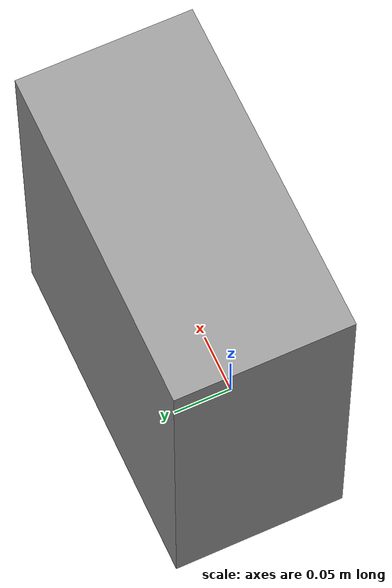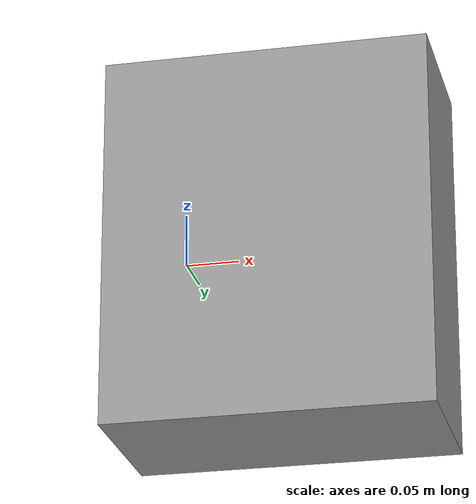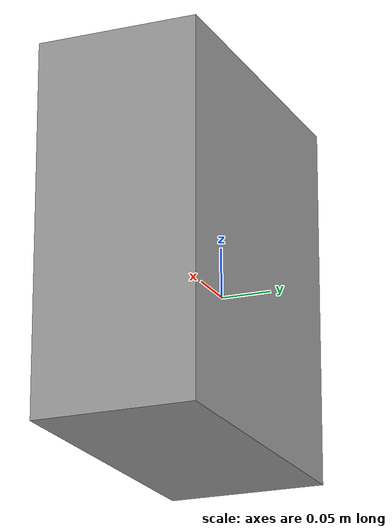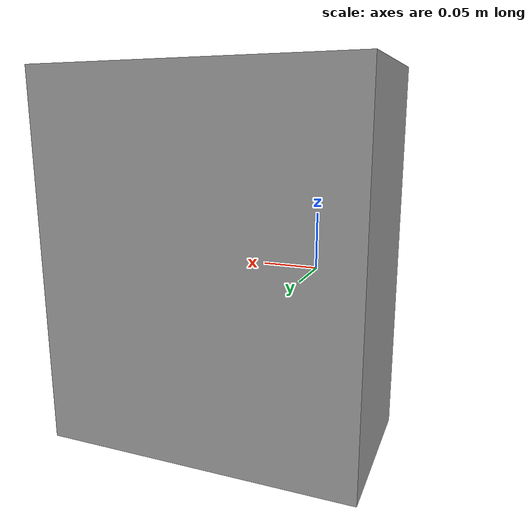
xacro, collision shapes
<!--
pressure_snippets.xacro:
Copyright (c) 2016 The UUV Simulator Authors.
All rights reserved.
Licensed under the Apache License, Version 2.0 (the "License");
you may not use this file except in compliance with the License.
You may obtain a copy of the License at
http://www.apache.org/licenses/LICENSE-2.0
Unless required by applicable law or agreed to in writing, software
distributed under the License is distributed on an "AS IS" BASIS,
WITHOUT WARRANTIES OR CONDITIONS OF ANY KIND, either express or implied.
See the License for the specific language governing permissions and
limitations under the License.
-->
<?xml version="1.0"?>
<robot name="x3_rov" xmlns:xacro="http://www.ros.org/wiki/xacro">

	<!-- includes -->
	<xacro:include filename="$(find x3_sim)/urdf/macros2.xacro" />

	<!-- properties/variables -->
	<xacro:arg name="debug" default="0"/>
	<xacro:arg name="namespace" default="x3_rov"/>
	<xacro:arg name="inertial_reference_frame" default="world"/>
	<xacro:property name="neutrally_buoyant" value="0" />

	<xacro:property name="x3_length" value="0.485" />
	<xacro:property name="x3_width"  value="0.257" />
	<xacro:property name="x3_height" value="0.354" />

	<xacro:property name="x3_cob"	 value="0 0 0.07}" /> <!-- center of balance xyz -->
	<xacro:property name="x3_mass"   value="900" />      <!-- kg -->
	<!-- calculations are based roughly on volume distribution -->
	<xacro:property name="x3_m_main"     value="${x3_mass * 0.66}" />
	<xacro:property name="x3_m_fin"      value="${x3_mass * 0.14}" />
	<xacro:property name="x3_m_thruster" value="${x3_mass * 0.03}" />

	<!-- * * * LINK DEFINITIONS * * * -->

	<!-- Dummy link to suppress warnings about root link inertia -->
	<!-- VERY IMPORTANT! Base link NEEDS to be target of hydrodynamic calculations -->
	<link name="$(arg namespace)/base_link">
	</link>

	<link name="$(arg namespace)/x3_rov_link">
		<xacro:box_inertial
			mass="${x3_mass}"
			x="${x3_length}"
			y="${x3_width * 4/5}"
			z="${x3_height}"
		>
			<origin xyz="0 0 0" rpy="0 0 0"/>
		</xacro:box_inertial>

		<collision>
			<origin xyz="${x3_length * 3/16} 0 0" rpy="0 0 0"/>
			<geometry>
				<box size="${x3_length * 5/8} ${x3_width * 3/5} ${x3_height}"/>
			</geometry>
		</collision>

		<visual>
			<origin xyz="0 0 0" rpy="0 0 0"/>
			<geometry>
				<mesh filename="package://x3_sim/models/x3_low_poly_smoothed.dae"/>
			</geometry>
			<material name="grey"/>
		</visual>
	</link>

	<!-- Attaching body to dummy link -->
	<joint name="$(arg namespace)/base_joint" type="fixed">
		<parent link="$(arg namespace)/base_link"/>
		<child link="$(arg namespace)/x3_rov_link"/>
	</joint>

	<!-- top fin -->
	<!-- bottom fin -->
	<!-- left thruster -->
	<!-- right thruster -->

	<!-- * * * SENSOR DEFINITIONS * * * -->

	<!-- camera -->
	<xacro:x3_camera
		suffix="1"
		parent_link="$(arg namespace)/base_link">
	<origin xyz="${x3_length*48/100} 0 ${x3_height*26/100}" rpy="0 0 0"/>
	</xacro:x3_camera>

	<!-- imu -->
	<xacro:include filename="$(find uuv_sensor_ros_plugins)/urdf/imu_snippets.xacro"/>
	<xacro:imu_plugin_macro
      namespace="$(arg namespace)"
      imu_suffix=""
      parent_link="$(arg namespace)/base_link"
      imu_topic="imu"
      mass_imu_sensor="0.015"
      gyroscope_noise_density="0.0003394"
      gyroscope_random_walk="0.000038785"
      gyroscope_bias_correlation_time="1000.0"
      gyroscope_turn_on_bias_sigma="0.0087"
      accelerometer_noise_density="0.004"
      accelerometer_random_walk="0.006"
      accelerometer_bias_correlation_time="300.0"
      accelerometer_turn_on_bias_sigma="0.1960"
      orientation_noise="0.01"
      enable_local_ned_frame="false"
      reference_frame="world"
      update_rate="100">
      <inertia ixx="0.00001" ixy="0.0" ixz="0.0" iyy="0.00001" iyz="0.0" izz="0.00001" />
      <origin xyz="${x3_length*48/100} 0 ${x3_height*26/100}" rpy="0 0 0"/>
    </xacro:imu_plugin_macro>

	<!-- pressure sensor -->
	<xacro:include filename="$(find uuv_sensor_ros_plugins)/urdf/pressure_snippets.xacro"/>
	<xacro:default_pressure
		namespace="$(arg namespace)"
		parent_link="$(arg namespace)/base_link">
	<origin xyz="${x3_length*48/100} 0 ${x3_height*26/100}" rpy="0 0 0"/>
	</xacro:default_pressure>

	<!-- magnetometer -->
	<xacro:include filename="$(find uuv_sensor_ros_plugins)/urdf/magnetometer_snippets.xacro"/>
	<xacro:default_magnetometer
		namespace="$(arg namespace)"
		parent_link="$(arg namespace)/base_link">
	</xacro:default_magnetometer>

	<!-- THRUSTER DEFINITIONS -->

	<!-- Port-Aft (left-back)-->
	<xacro:thruster_macro thruster_id="0">
		<origin xyz="${-x3_length * 21/80} ${ (x3_width * 31/100)} 0" rpy="0 0 ${pi}"/>
	</xacro:thruster_macro>

	<!-- Stbd-Aft (right-back)-->
	<xacro:thruster_macro thruster_id="1">
		<origin xyz="${-x3_length * 21/80} ${-(x3_width * 31/100)} 0" rpy="0 0 ${pi}"/>
	</xacro:thruster_macro>

	<!-- Middle-Vert -->
	<xacro:thruster_macro thruster_id="2">
		<origin xyz="0 0 ${x3_height*(1/2 - 1/6)}" rpy="0 ${-pi/2} 0"/>
	</xacro:thruster_macro>

	<!-- Middle-Lat -->
	<xacro:thruster_macro thruster_id="3">
		<origin xyz="${x3_length * 17.5/100} 0 0" rpy="0 0 ${pi/2}"/>
	</xacro:thruster_macro>

	<!-- Creating hydrodynamic model of the system -->
	<xacro:rov_hydro_model
		parent_link="$(arg namespace)/base_link"
		mass="${x3_mass}"
		length="${x3_length}"
		width="${x3_width}"
		height="${x3_height}"
		cob="${x3_cob}"
		neutrally_buoyant="${neutrally_buoyant}"
	/>

	<!-- * * * GAZEBO CONFIGURATION * * * -->
	<gazebo>
		<plugin name="gazebo_ros_control" filename="libgazebo_ros_control.so">
			<robotNamespace>/$(arg namespace)</robotNamespace>
			<robotParam>/$(arg namespace)/robot_description</robotParam>
		</plugin>
		<!-- Default joint state publisher -->
		<plugin name="uuv_joint_state_publisher" filename="libuuv_joint_state_publisher.so">
			<robotNamespace>$(arg namespace)</robotNamespace>
			<updateRate>50</updateRate>
		</plugin>
	</gazebo>

	<!-- * * * PUBLISH MODEL STATE * * * -->

</robot>

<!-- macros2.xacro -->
<robot name="x3_rov_macros" xmlns:xacro="http://www.ros.org/wiki/xacro">

	<!-- properties/variables -->
	<xacro:arg name="debug" default="0"/>
	<xacro:arg name="namespace" default="x3_rov"/>
	<xacro:arg name="inertial_reference_frame" default="world"/>

	<!-- * * * inertial calculations * * * -->
	<!-- source: -->
	<!-- https://github.com/ros-industrial/universal_robot/blob/06d8b9e2f5f86aa54f9f2845f11edbc84e2f951e/ur_description/urdf/ur10.urdf.xacro#L12-L20 -->

	<!-- cylinder -->
	<xacro:macro name="cylinder_inertial" params="*origin mass radius length">
    <inertial>
      <mass value="${mass}" />
			<xacro:insert_block name="origin" />

      <inertia
		ixx="${0.0833333 * mass * (3 * radius * radius + length * length)}" ixy="0.0" ixz="0.0"
        iyy="${0.0833333 * mass * (3 * radius * radius + length * length)}" iyz="0.0"
        izz="${0.5 * mass * radius * radius}"
			/>
    </inertial>
  </xacro:macro>

	<!-- * * * macros for creating links * * * -->

	<!-- create fin and attach to parent -->
	<xacro:macro name="x3_fin" params="suffix parent_link origin_xyz mass radius length">

		<link name="$(arg namespace)/fin_${suffix}_link">

			<xacro:cylinder_inertial
				mass="${mass}"
				radius="${radius}"
				length="${length}"
			>
				<origin xyz="${-length/2} 0 0" rpy="0 ${pi/2} 0"/>
			</xacro:cylinder_inertial>

			<collision>
				<origin xyz="${-length/2} 0 0" rpy="0 ${pi/2} 0"/>
				<geometry>
					<cylinder radius="${radius}" length="${length}"/>
				</geometry>
			</collision>

			<visual>
				<origin rpy="0 ${pi/2} 0" xyz="${-length/2} 0 0"/>
				<geometry>
					<cylinder radius="1e-5" length="1e-5"/>
				</geometry>
				<material name="black"/>
			</visual>
		</link>

		<joint name="$(arg namespace)/fin_${suffix}_joint" type="fixed">
			<parent link="${parent_link}"/>
			<child link="$(arg namespace)/fin_${suffix}_link"/>
			<origin xyz="${origin_xyz}" rpy="0 0 0"/>
			<axis xyz="0 0 0"/>
		</joint>

	</xacro:macro>

	<!-- create thruster housing and attach to parent -->
	<xacro:macro name="x3_thruster" params="suffix parent_link origin_xyz mass radius length mirror">

		<link name="$(arg namespace)/thruster_conn_${suffix}_link">

			<xacro:cylinder_inertial
				mass="${mass * 1/3}"
				radius="${radius * 2/3}"
				length="${length/2}"
			>
				<origin xyz="${-length/4} 0 0" rpy="0 ${pi/2} 0"/>
			</xacro:cylinder_inertial>

			<collision>
				<origin xyz="${-length/4} 0 0" rpy="0 ${pi/2} 0"/>
				<geometry>
					<cylinder radius="${radius * 2/3}" length="${length/2}"/>
				</geometry>
			</collision>

			<visual>
				<origin xyz="${-length/4} 0 0" rpy="0 ${pi/2} 0" />
				<geometry>
					<cylinder radius="1e-5" length="1e-5"/>
				</geometry>
				<material name="black"/>
			</visual>
		</link>

		<joint name="$(arg namespace)/thruster_conn_${suffix}_joint" type="fixed">
			<parent link="${parent_link}"/>
			<child link="$(arg namespace)/thruster_conn_${suffix}_link"/>
			<origin xyz="${origin_xyz}" rpy="0 0 0"/>
			<axis xyz="0 0 0"/>
		</joint>

		<link name="$(arg namespace)/thruster_body_${suffix}_link">

			<xacro:cylinder_inertial
				mass="${mass * 2/3}"
				radius="${radius}"
				length="${length/2}"
			>
				<origin xyz="${-length/4} 0 0" rpy="0 ${pi/2} 0"/>
			</xacro:cylinder_inertial>

			<collision>
				<origin xyz="${-length/4} 0 0" rpy="0 ${pi/2} 0"/>
				<geometry>
					<cylinder radius="${radius}" length="${length/2}"/>
				</geometry>
			</collision>

			<visual>
				<origin xyz="${-length/4} 0 0" rpy="0 ${pi/2} 0"/>
				<geometry>
					<cylinder radius="1e-5" length="1e-5"/>
				</geometry>
				<material name="black"/>
			</visual>
		</link>

		<joint name="$(arg namespace)/thruster_body_${suffix}_joint" type="fixed">
			<parent link="$(arg namespace)/thruster_conn_${suffix}_link"/>
			<child link="$(arg namespace)/thruster_body_${suffix}_link"/>
			<origin xyz="${-length/2} ${mirror * radius * 1/8} 0" rpy="0 0 0"/>
			<axis xyz="0 0 0"/>
		</joint>

	</xacro:macro>

	<!-- camera macro - based off of uuv camera snippet with some modifications -->
	<xacro:macro name="x3_camera" params="parent_link suffix *origin">
		<link name="$(arg namespace)/camera${suffix}_link">
			<xacro:box_inertial
				mass="1e-4"
				x="1e-4"
				y="1e-4"
				z="1e-4"
			>
			<origin xyz="0 0 0" rpy="0 0 0"/>
			</xacro:box_inertial>

			<visual>
				<origin xyz="0 0 0" rpy="0 0 0"/>
				<geometry>
				<box size="1e-4 1e-4 1e-4"/>
				</geometry>
			</visual>

			<collision>
				<origin xyz="0 0 0" rpy="0 0 0"/>
				<geometry>
				<box size="1e-4 1e-4 1e-4"/>
				</geometry>
			</collision>
		</link>

		<joint name="$(arg namespace)/camera${suffix}_joint" type="revolute">
			<parent link="${parent_link}"/>
			<child link="$(arg namespace)/camera${suffix}_link"/>

			<xacro:insert_block name="origin" />
			<axis xyz="0 1 0"/>
			<limit effort="1e-12" lower="${-pi/6}" upper="${pi/6}" velocity="0.5"/>
		</joint>

		<transmission name="$(arg namespace)/camera${suffix}/trans">
			<type>transmission_interface/SimpleTransmission</type>
			<joint name="$(arg namespace)/camera${suffix}_joint">
				<hardwareInterface>hardware_interface/EffortJointInterface</hardwareInterface>
			</joint>
			<actuator name="$(arg namespace)/camera${suffix}/motor">
				<hardwareInterface>hardware_interface/EffortJointInterface</hardwareInterface>
				<mechanicalReduction>1</mechanicalReduction>
			</actuator>
		</transmission>

		<gazebo reference="$(arg namespace)/camera${suffix}_link">
			<sensor type="camera" name="camera${suffix}_link">
				<update_rate>30</update_rate>
				<camera name="camera${suffix}_link">
				<vertical_fov>115</vertical_fov>
				<image>
					<width>1920</width>
					<height>1080</height>
					<format>R8G8B8</format>
				</image>
				<clip>
					<near>0.05</near>
					<far>300</far>
				</clip>
				<noise>
					<type>gaussian</type>
					<mean>0.0</mean>
					<stddev>0.007</stddev>
				</noise>
				</camera>
				<plugin name="camera${suffix}_controller" filename="libgazebo_ros_camera.so">
				<updateRate>30</updateRate>

				<cameraName>x3_cam</cameraName>
				<frameName>$(arg namespace)/camera${suffix}_link</frameName>
				<imageTopicName>image_raw</imageTopicName>
				<cameraInfoTopicName>camera_info</cameraInfoTopicName>

				<hackBaseline>0.7</hackBaseline>

				<distortionK1>0.0</distortionK1>
				<distortionK2>0.0</distortionK2>
				<distortionK3>0.0</distortionK3>
				<distortionT1>0.0</distortionT1>
				<distortionT2>0.0</distortionT2>

				<attenuationR>0.0</attenuationR>
				<attenuationG>0.0</attenuationG>
				<attenuationB>0.0</attenuationB>

				<backgroundR>0</backgroundR>
				<backgroundG>0</backgroundG>
				<backgroundB>0</backgroundB>

				<imageTopicName>image_raw</imageTopicName>

				<!-- required for ros depth cam -->
				</plugin>
			</sensor>
		</gazebo>
	</xacro:macro>

	<!-- hydrodynamic_model -->
	<xacro:macro name="rov_hydro_model" params="parent_link mass length width height cob neutrally_buoyant">

		<gazebo>
			<plugin name="uuv_plugin" filename="libuuv_underwater_object_ros_plugin.so">
				<!-- Hydro parameters for the vehicle-->
				<fluid_density>1028.0</fluid_density>
				<flow_velocity_topic>hydrodynamics/current_velocity</flow_velocity_topic>
				<debug>$(arg debug)</debug>

				<link name="${parent_link}">
					<neutrally_buoyant>${neutrally_buoyant}</neutrally_buoyant>
					<volume>${mass/1028}</volume>
					<box>
						<width>${width}</width>
						<length>${length}</length>
						<height>${height}</height>
					</box>
					<center_of_buoyancy>${cob}</center_of_buoyancy>
					<hydrodynamic_model>
						<type>fossen</type>
						<added_mass>
						<!-- based on values from rexrov but tweaked -->
						<!-- scaled by a factor of 100 -->
						 450    0    0     0    0    0
						   0  450    0     0    0    0
						   0    0  450     0    0    0
						   0    0    0   1.3    0    0
						   0    0    0     0  2.7    0
						   0    0    0     0    0  2.1
						</added_mass>
						<!-- Linear damping: see p.31 in Berg2012 -->
						<linear_damping>
						 -150 -200 -200 -100 -100 -50
						</linear_damping>
						<!-- Non-linear damping: see p.30 in Berg2012 -->
						<quadratic_damping>
						-1500 -2000 -2000 -500 -500 -500
						</quadratic_damping>
					</hydrodynamic_model>
				</link>
			</plugin>
		</gazebo>

	</xacro:macro>

	<!-- Thruster macro -->
	<xacro:include filename="$(find uuv_descriptions)/urdf/common.urdf.xacro"/>
	<xacro:include filename="$(find uuv_gazebo_ros_plugins)/urdf/thruster_snippets.xacro"/>
	<!-- Thruster model -->
	<xacro:property name="thruster_mesh_file" value="file://$(find x3_sim)/models/x3_low_poly_propeller.dae"/>
	<!-- Wrapper for thruster macro -->
	<xacro:macro name="thruster_macro" params="thruster_id *origin">
		<xacro:thruster_module_first_order_basic_fcn_macro
			namespace="$(arg namespace)"
			thruster_id="${thruster_id}"
			mesh_filename="${thruster_mesh_file}"
			dyn_time_constant="0.05"
			rotor_constant="0.1"
			>
			<xacro:insert_block name="origin"/>
		</xacro:thruster_module_first_order_basic_fcn_macro>
	</xacro:macro>

</robot>

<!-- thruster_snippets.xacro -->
<robot xmlns:xacro="http://www.ros.org/wiki/xacro">

  <!-- ROTOR DYNAMICS MACROS -->

  <!-- First order dynamics -->

  <xacro:macro name="rotor_dyn_first_order_macro" params="time_constant">
    <dynamics>
      <type>FirstOrder</type>
      <timeConstant>${time_constant}</timeConstant>
    </dynamics>
  </xacro:macro>

  <!--
    MACROS FOR CONVERSION FUNCTIONS BETWEEN ROTOR'S ANG. VELOCITY AND
    THRUSTER FORCE
  -->

  <!--
    1) Basic curve
      Input: x
      Output: thrust
      Function: thrust = rotorConstant * x * abs(x)
  -->
  <xacro:macro name="thruster_cf_basic_macro"
    params="rotor_constant">
    <conversion>
      <type>Basic</type>
      <rotorConstant>${rotor_constant}</rotorConstant>
    </conversion>
  </xacro:macro>

  <xacro:macro name="thruster_cf_dead_zone_macro"
    params="rotor_constant_l
            rotor_constant_r
            delta_l
            delta_r">
    <conversion>
      <type>Bessa</type>
      <rotorConstantL>${rotor_constant_l}</rotorConstantL>
      <rotorConstantR>${rotor_constant_r}</rotorConstantR>
      <deltaL>${delta_l}</deltaL>
      <deltaR>${delta_r}</deltaR>
    </conversion>
  </xacro:macro>

  <xacro:macro name="thruster_cf_linear_interp_macro"
    params="input_values
            output_values">
    <conversion>
      <type>LinearInterp</type>
      <inputValues>${input_values}</inputValues>
      <outputValues>${output_values}</outputValues>
    </conversion>
  </xacro:macro>

  <!-- THRUSTER MODULE MACROS  -->

  <xacro:macro name="generic_thruster_macro"
    params="namespace
            thruster_id
            *origin
            mesh_filename
            *dynamics
            *conversion">
    <joint name="${namespace}/thruster_${thruster_id}_joint" type="continuous">
      <xacro:insert_block name="origin"/>
      <axis xyz="1 0 0"/>
      <parent link="${namespace}/base_link"/>
      <child link="${namespace}/thruster_${thruster_id}"/>
    </joint>

    <link name="${namespace}/thruster_${thruster_id}">
      <xacro:box_inertial x="0" y="0" z="0" mass="0.001">
        <origin xyz="0 0 0" rpy="0 0 0"/>
      </xacro:box_inertial>
      <visual>
        <origin rpy="0 0 0" xyz="0 0 0"/>
        <geometry>
          <mesh filename="${mesh_filename}" scale="1 1 1"/>
        </geometry>
      </visual>
      <collision>
        <!-- todo: gazebo needs a collision volume or it will ignore the pose of
           the joint that leads to this link (and assume it to be the identity) -->
        <geometry>
          <cylinder length="0.000001" radius="0.000001"/>
        </geometry>
        <origin xyz="0 0 0" rpy="0 0 0"/>
      </collision>
    </link>

    <gazebo>
      <plugin name="${namespace}_${thruster_id}_thruster_model" filename="libuuv_thruster_ros_plugin.so">
        <linkName>${namespace}/thruster_${thruster_id}</linkName>
        <jointName>${namespace}/thruster_${thruster_id}_joint</jointName>
        <thrusterID>${thruster_id}</thrusterID>
        <xacro:insert_block name="dynamics"/>
        <xacro:insert_block name="conversion"/>
      </plugin>
    </gazebo>

    <gazebo reference="${namespace}/thruster_${thruster_id}">
      <selfCollide>false</selfCollide>
    </gazebo>
  </xacro:macro>

  <!--
    Thruster model with first order dynamic model for the rotor dynamics
    and a proportional non-linear steady-state conversion from the rotor's
    angular velocity to output thrust force
  -->

  <xacro:macro name="thruster_module_first_order_basic_fcn_macro"
      params="namespace
              thruster_id
              *origin
              mesh_filename
              dyn_time_constant
              rotor_constant">
    <xacro:generic_thruster_macro
      namespace="${namespace}"
      thruster_id="${thruster_id}"
      mesh_filename="${mesh_filename}">
      <xacro:insert_block name="origin"/>
      <xacro:rotor_dyn_first_order_macro time_constant="${dyn_time_constant}"/>
      <xacro:thruster_cf_basic_macro rotor_constant="${rotor_constant}"/>
    </xacro:generic_thruster_macro>
  </xacro:macro>

</robot>

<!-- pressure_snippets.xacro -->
<robot xmlns:xacro="http://www.ros.org/wiki/xacro">

  <xacro:macro name="no_collision">
    <collision>
      <geometry>
        <cylinder length="${0.000001}" radius="${0.000001}" />
      </geometry>
      <origin xyz="0 0 0" rpy="0 ${0.5*pi} 0"/>
    </collision>
  </xacro:macro>

  <xacro:macro name="default_pressure_macro" params="namespace parent_link *origin">
    <xacro:pressure_plugin_macro
      namespace="${namespace}"
      suffix=""
      parent_link="${parent_link}"
      topic="pressure"
      mass="0.015"
      update_rate="10"
      range="30000"
      noise_sigma="3.0"
      noise_amplitude="0.0"
      estimateDepth="false"
      standardPressure="101.325"
      kPaPerM="9.80638">
      <inertia ixx="0.00001" ixy="0.0" ixz="0.0" iyy="0.00001" iyz="0.0" izz="0.00001" />
      <xacro:insert_block name="origin" />>
    </xacro:pressure_plugin_macro>
  </xacro:macro>

  <xacro:macro name="default_pressure" params="namespace parent_link *origin">
    <xacro:pressure_plugin_macro
      namespace="${namespace}"
      suffix=""
      parent_link="${parent_link}"
      topic="pressure"
      mass="0.015"
      update_rate="10"
      range="30000"
      noise_sigma="3.0"
      noise_amplitude="0.0"
      estimateDepth="false"
      standardPressure="101.325"
      kPaPerM="9.80638">
      <inertia ixx="0.00001" ixy="0.0" ixz="0.0" iyy="0.00001" iyz="0.0" izz="0.00001" />
      <xacro:insert_block name="origin" />
    </xacro:pressure_plugin_macro>
  </xacro:macro>

  <xacro:macro name="pressure_plugin_macro"
    params="namespace suffix parent_link topic mass update_rate
      range noise_sigma noise_amplitude estimateDepth standardPressure kPaPerM
      *inertia *origin">

    <link name="${namespace}/pressure${suffix}_link">
      <inertial>
        <xacro:insert_block name="inertia" />
        <mass value="${mass}" />  <!-- [kg] -->
        <origin xyz="0 0 0" rpy="0 0 0" />
      </inertial>
      <visual>
        <geometry>
          <mesh filename="file://$(find uuv_sensor_ros_plugins)/meshes/pressure.dae" scale="1 1 1"/>
        </geometry>
      </visual>
      <xacro:no_collision/>
    </link>

    <joint name="${namespace}/pressure${suffix}_joint" type="revolute">
      <xacro:insert_block name="origin" />
      <parent link="${parent_link}" />
      <child link="${namespace}/pressure${suffix}_link" />
      <limit upper="0" lower="0" effort="0" velocity="0" />
      <axis xyz="1 0 0"/>
    </joint>

    <gazebo>
      <plugin filename="libuuv_gazebo_ros_subsea_pressure_plugin.so" name="libuuv_gazebo_subseapressure${suffix}_plugin">
        <robot_namespace>${namespace}</robot_namespace> <!-- (string, required): ros namespace in which the messages are published -->
        <link_name>${namespace}/pressure${suffix}_link</link_name> <!-- (string, required): name of the body which holds the IMU sensor -->
        <sensor_topic>${topic}</sensor_topic> <!-- (string): name of the sensor output topic and prefix of service names (defaults to imu) -->
        <update_rate>${update_rate}</update_rate> <!-- Update period of accelerometer and gyroscope [s] -->

        <saturation>${range}</saturation> <!-- measurement range [kPa] -->
        <noise_sigma>${noise_sigma}</noise_sigma> <!-- measurement stddev [kPa] -->
        <noise_amplitude>${noise_amplitude}</noise_amplitude>
        <estimate_depth_on>${estimateDepth}</estimate_depth_on> <!-- infer depth? -->
        <standard_pressure>${standardPressure}</standard_pressure> <!-- pressure at sea level (depth 0 m) [kPa] -->
        <kPa_per_meter>${kPaPerM}</kPa_per_meter> <!-- increase in pressure [kPa] per [m] in increased depth -->
        <enable_gazebo_messages>false</enable_gazebo_messages>
      </plugin>
    </gazebo>
  </xacro:macro>

</robot>

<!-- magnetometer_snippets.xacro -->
<robot xmlns:xacro="http://www.ros.org/wiki/xacro">

  <!-- Macro for a minimal collision block (for when you do not want collision block but gazebo needs one) -->
  <xacro:macro name="no_collision">
    <collision>
      <geometry>
        <cylinder length="${0.000001}" radius="${0.000001}" />
      </geometry>
      <origin xyz="0 0 0" rpy="0 ${0.5*pi} 0"/>
    </collision>
  </xacro:macro>

  <xacro:macro name="default_magnetometer" params="namespace parent_link">
    <!-- Bosch BMX055. -->
    <xacro:magnetometer_plugin_macro
      namespace="${namespace}"
      suffix=""
      parent_link="${parent_link}"
      topic="magnetometer"
      mass="0.015"
      update_rate="50"
      mag_intensity="65.0"
      noise_xy="1.0"
      noise_z="1.4"
      noise_amplitude="0"
      turn_on_bias="2.0">
      <inertia ixx="0.00001" ixy="0.0" ixz="0.0" iyy="0.00001" iyz="0.0" izz="0.00001" />
      <origin xyz="0 0 0" rpy="0 0 0" />
    </xacro:magnetometer_plugin_macro>
  </xacro:macro>

  <!-- Macro to add a Magnetometer. -->
  <xacro:macro name="magnetometer_plugin_macro"
    params="namespace suffix parent_link topic mass update_rate
      mag_intensity noise_xy noise_z turn_on_bias noise_amplitude
      *inertia *origin">
    <!-- Sensor link -->
    <link name="${namespace}/magnetometer${suffix}_link">
      <inertial>
        <xacro:insert_block name="inertia" />
        <mass value="${mass}" />
        <origin xyz="0 0 0" rpy="0 0 0" />
      </inertial>
      <visual>
        <geometry>
          <box size="0.1 0.1 0.1" />
        </geometry>
      </visual>
      <xacro:no_collision/>
    </link>

    <!-- Sensor joint -->
    <joint name="${namespace}/magnetometer${suffix}_joint" type="revolute">
      <xacro:insert_block name="origin" />
      <parent link="${parent_link}" />
      <child link="${namespace}/magnetometer${suffix}_link" />
      <limit upper="0" lower="0" effort="0" velocity="0" />
      <axis xyz="1 0 0"/>
    </joint>

    <gazebo>
      <plugin filename="libuuv_gazebo_ros_magnetometer_plugin.so" name="libuuv_gazebo_ros_magnetometer_${suffix}_plugin">
        <robot_namespace>${namespace}</robot_namespace> <!-- (string, required): ros namespace in which the messages are published -->
        <link_name>${namespace}/magnetometer${suffix}_link</link_name> <!-- (string, required): name of the body which holds the IMU sensor -->
        <sensor_topic>${topic}</sensor_topic> <!-- (string): name of the sensor output topic and prefix of service names (defaults to imu) -->
        <update_rate>${update_rate}</update_rate> <!-- Update period of accelerometer and gyroscope [s] -->

        <intensity>${mag_intensity}</intensity> <!-- magnitude of magnetic field [muT] -->
        <reference_heading>${pi}</reference_heading> <!-- reference heading [rad] -->
        <declination>0.0</declination> <!-- reference declination [rad] -->
        <inclination>${pi*60/180}</inclination> <!-- refernce inclination [rad] -->
        <noise_xy>${noise_xy}</noise_xy> <!-- Discrete-time std. dev. of output noise in xy-axis [muT] -->
        <noise_z>${noise_z}</noise_z> <!-- Discrete-time std. dev. of output noise in z-axis [muT] -->
        <turn_on_bias>${turn_on_bias}</turn_on_bias> <!-- Std. dev. of turn-on-bias [muT] -->
        <noise_amplitude>${noise_amplitude}</noise_amplitude>
        <enable_gazebo_messages>false</enable_gazebo_messages>
        <enable_local_aaa_frame>false</enable_local_aaa_frame>
      </plugin>
    </gazebo>
  </xacro:macro>

</robot>
